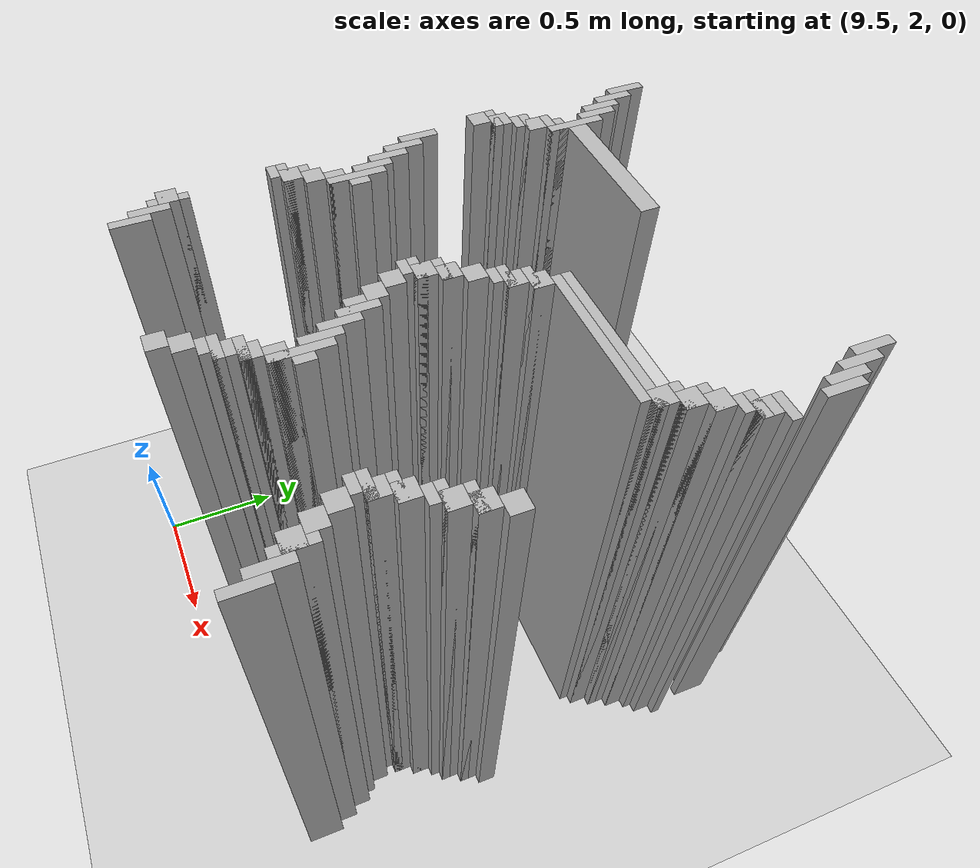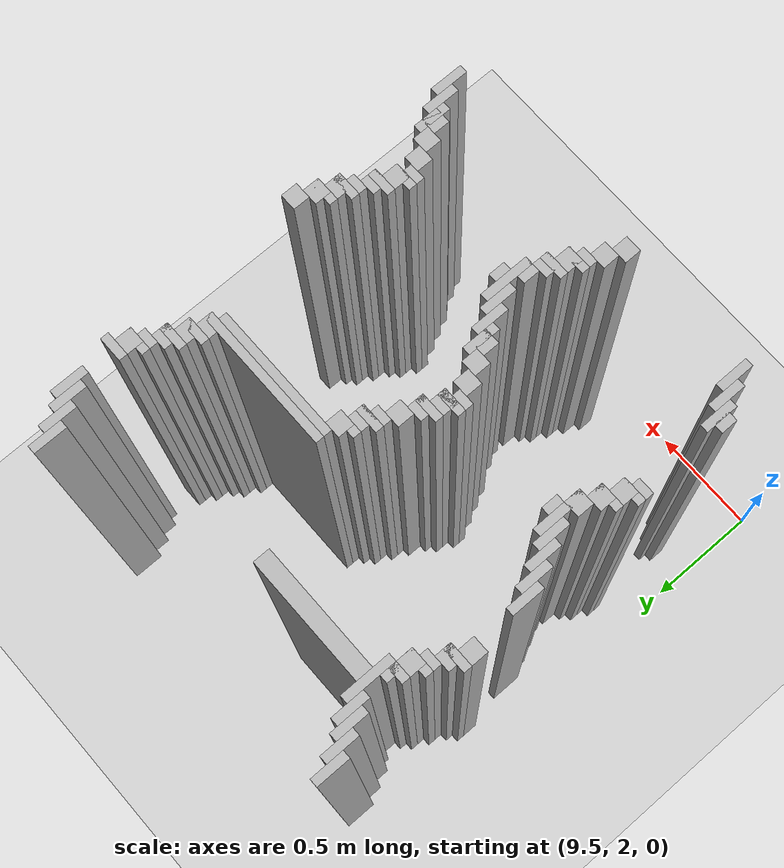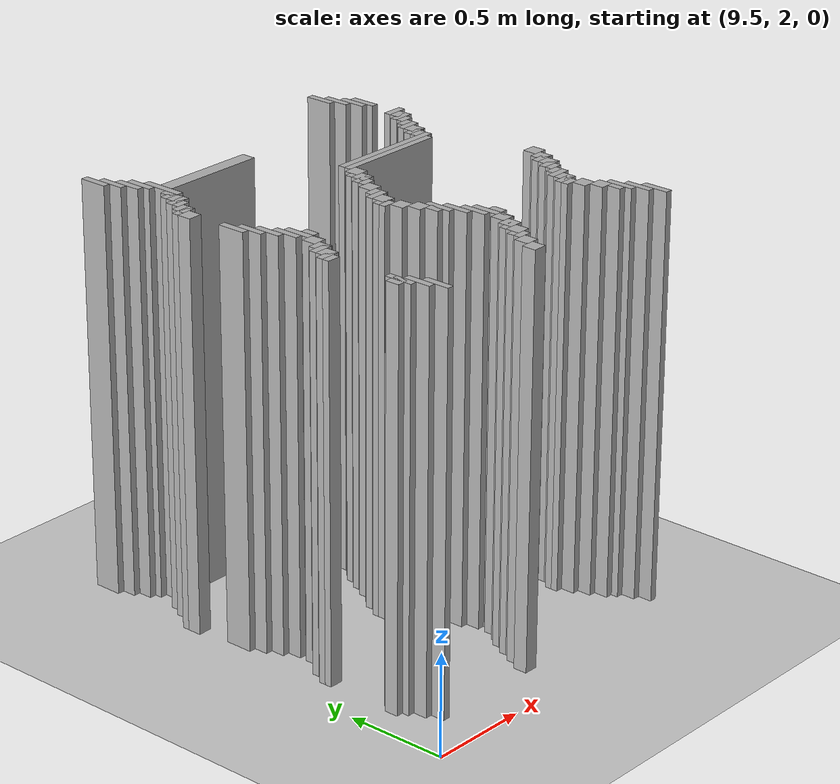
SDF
<sdf version="1.6">
 <world name="slam_world">
  <model name="ground_plane">
   <static>true</static>
   <link name="link">
    <collision name="collision">
     <geometry><plane><normal>0 0 1</normal><size>100 100</size></plane></geometry>
    </collision>
    <visual name="visual">
     <geometry><plane><normal>0 0 1</normal><size>100 100</size></plane></geometry>
     <material>
      <ambient>0.8 0.8 0.8 1</ambient>
      <diffuse>0.8 0.8 0.8 1</diffuse>
      <specular>0.8 0.8 0.8 1</specular>
     </material>
    </visual>
   </link>
  </model>
  <model name="wall_4465">
   <static>true</static>
   <pose>9.657772621809745 4.1415313225058 1.0 0 0 0</pose>
   <link name="link">
    <collision name="collision">
     <geometry><box><size>0.03480278422273782 0.13921113689095127 2.0</size></box></geometry>
    </collision>
    <visual name="visual">
     <geometry><box><size>0.03480278422273782 0.13921113689095127 2.0</size></box></geometry>
     <material><ambient>0.5 0.5 0.5 1</ambient><diffuse>0.7 0.7 0.7 1</diffuse></material>
    </visual>
   </link>
  </model>
  <model name="wall_4466">
   <static>true</static>
   <pose>11.119489559164732 4.1415313225058 1.0 0 0 0</pose>
   <link name="link">
    <collision name="collision">
     <geometry><box><size>0.03480278422273782 0.13921113689095127 2.0</size></box></geometry>
    </collision>
    <visual name="visual">
     <geometry><box><size>0.03480278422273782 0.13921113689095127 2.0</size></box></geometry>
     <material><ambient>0.5 0.5 0.5 1</ambient><diffuse>0.7 0.7 0.7 1</diffuse></material>
    </visual>
   </link>
  </model>
  <model name="wall_4490">
   <static>true</static>
   <pose>9.692575406032482 4.071925754060325 1.0 0 0 0</pose>
   <link name="link">
    <collision name="collision">
     <geometry><box><size>0.03480278422273782 0.13921113689095127 2.0</size></box></geometry>
    </collision>
    <visual name="visual">
     <geometry><box><size>0.03480278422273782 0.13921113689095127 2.0</size></box></geometry>
     <material><ambient>0.5 0.5 0.5 1</ambient><diffuse>0.7 0.7 0.7 1</diffuse></material>
    </visual>
   </link>
  </model>
  <model name="wall_4491">
   <static>true</static>
   <pose>11.154292343387471 4.071925754060325 1.0 0 0 0</pose>
   <link name="link">
    <collision name="collision">
     <geometry><box><size>0.03480278422273782 0.13921113689095127 2.0</size></box></geometry>
    </collision>
    <visual name="visual">
     <geometry><box><size>0.03480278422273782 0.13921113689095127 2.0</size></box></geometry>
     <material><ambient>0.5 0.5 0.5 1</ambient><diffuse>0.7 0.7 0.7 1</diffuse></material>
    </visual>
   </link>
  </model>
  <model name="wall_4505">
   <static>true</static>
   <pose>9.72737819025522 4.002320185614849 1.0 0 0 0</pose>
   <link name="link">
    <collision name="collision">
     <geometry><box><size>0.03480278422273782 0.13921113689095127 2.0</size></box></geometry>
    </collision>
    <visual name="visual">
     <geometry><box><size>0.03480278422273782 0.13921113689095127 2.0</size></box></geometry>
     <material><ambient>0.5 0.5 0.5 1</ambient><diffuse>0.7 0.7 0.7 1</diffuse></material>
    </visual>
   </link>
  </model>
  <model name="wall_4506">
   <static>true</static>
   <pose>11.189095127610209 4.002320185614849 1.0 0 0 0</pose>
   <link name="link">
    <collision name="collision">
     <geometry><box><size>0.03480278422273782 0.13921113689095127 2.0</size></box></geometry>
    </collision>
    <visual name="visual">
     <geometry><box><size>0.03480278422273782 0.13921113689095127 2.0</size></box></geometry>
     <material><ambient>0.5 0.5 0.5 1</ambient><diffuse>0.7 0.7 0.7 1</diffuse></material>
    </visual>
   </link>
  </model>
  <model name="wall_4520">
   <static>true</static>
   <pose>9.762180974477959 3.967517401392111 1.0 0 0 0</pose>
   <link name="link">
    <collision name="collision">
     <geometry><box><size>0.03480278422273782 0.13921113689095127 2.0</size></box></geometry>
    </collision>
    <visual name="visual">
     <geometry><box><size>0.03480278422273782 0.13921113689095127 2.0</size></box></geometry>
     <material><ambient>0.5 0.5 0.5 1</ambient><diffuse>0.7 0.7 0.7 1</diffuse></material>
    </visual>
   </link>
  </model>
  <model name="wall_4521">
   <static>true</static>
   <pose>11.223897911832946 3.967517401392111 1.0 0 0 0</pose>
   <link name="link">
    <collision name="collision">
     <geometry><box><size>0.03480278422273782 0.13921113689095127 2.0</size></box></geometry>
    </collision>
    <visual name="visual">
     <geometry><box><size>0.03480278422273782 0.13921113689095127 2.0</size></box></geometry>
     <material><ambient>0.5 0.5 0.5 1</ambient><diffuse>0.7 0.7 0.7 1</diffuse></material>
    </visual>
   </link>
  </model>
  <model name="wall_4543">
   <static>true</static>
   <pose>9.796983758700696 3.863109048723898 1.0 0 0 0</pose>
   <link name="link">
    <collision name="collision">
     <geometry><box><size>0.03480278422273782 0.2088167053364269 2.0</size></box></geometry>
    </collision>
    <visual name="visual">
     <geometry><box><size>0.03480278422273782 0.2088167053364269 2.0</size></box></geometry>
     <material><ambient>0.5 0.5 0.5 1</ambient><diffuse>0.7 0.7 0.7 1</diffuse></material>
    </visual>
   </link>
  </model>
  <model name="wall_4565">
   <static>true</static>
   <pose>10.075406032482599 3.863109048723898 1.0 0 0 0</pose>
   <link name="link">
    <collision name="collision">
     <geometry><box><size>0.5220417633410672 0.06960556844547564 2.0</size></box></geometry>
    </collision>
    <visual name="visual">
     <geometry><box><size>0.5220417633410672 0.06960556844547564 2.0</size></box></geometry>
     <material><ambient>0.5 0.5 0.5 1</ambient><diffuse>0.7 0.7 0.7 1</diffuse></material>
    </visual>
   </link>
  </model>
  <model name="wall_4581">
   <static>true</static>
   <pose>9.779582366589327 3.793503480278422 1.0 0 0 0</pose>
   <link name="link">
    <collision name="collision">
     <geometry><box><size>0.06960556844547564 0.06960556844547564 2.0</size></box></geometry>
    </collision>
    <visual name="visual">
     <geometry><box><size>0.06960556844547564 0.06960556844547564 2.0</size></box></geometry>
     <material><ambient>0.5 0.5 0.5 1</ambient><diffuse>0.7 0.7 0.7 1</diffuse></material>
    </visual>
   </link>
  </model>
  <model name="wall_4595">
   <static>true</static>
   <pose>9.762180974477959 3.776102088167053 1.0 0 0 0</pose>
   <link name="link">
    <collision name="collision">
     <geometry><box><size>0.10440835266821345 0.03480278422273782 2.0</size></box></geometry>
    </collision>
    <visual name="visual">
     <geometry><box><size>0.10440835266821345 0.03480278422273782 2.0</size></box></geometry>
     <material><ambient>0.5 0.5 0.5 1</ambient><diffuse>0.7 0.7 0.7 1</diffuse></material>
    </visual>
   </link>
  </model>
  <model name="wall_4596">
   <static>true</static>
   <pose>11.223897911832946 3.776102088167053 1.0 0 0 0</pose>
   <link name="link">
    <collision name="collision">
     <geometry><box><size>0.10440835266821345 0.03480278422273782 2.0</size></box></geometry>
    </collision>
    <visual name="visual">
     <geometry><box><size>0.10440835266821345 0.03480278422273782 2.0</size></box></geometry>
     <material><ambient>0.5 0.5 0.5 1</ambient><diffuse>0.7 0.7 0.7 1</diffuse></material>
    </visual>
   </link>
  </model>
  <model name="wall_4609">
   <static>true</static>
   <pose>9.744779582366588 3.7238979118329465 1.0 0 0 0</pose>
   <link name="link">
    <collision name="collision">
     <geometry><box><size>0.06960556844547564 0.06960556844547564 2.0</size></box></geometry>
    </collision>
    <visual name="visual">
     <geometry><box><size>0.06960556844547564 0.06960556844547564 2.0</size></box></geometry>
     <material><ambient>0.5 0.5 0.5 1</ambient><diffuse>0.7 0.7 0.7 1</diffuse></material>
    </visual>
   </link>
  </model>
  <model name="wall_4610">
   <static>true</static>
   <pose>11.206496519721577 3.7238979118329465 1.0 0 0 0</pose>
   <link name="link">
    <collision name="collision">
     <geometry><box><size>0.06960556844547564 0.06960556844547564 2.0</size></box></geometry>
    </collision>
    <visual name="visual">
     <geometry><box><size>0.06960556844547564 0.06960556844547564 2.0</size></box></geometry>
     <material><ambient>0.5 0.5 0.5 1</ambient><diffuse>0.7 0.7 0.7 1</diffuse></material>
    </visual>
   </link>
  </model>
  <model name="wall_4623">
   <static>true</static>
   <pose>9.72737819025522 3.706496519721578 1.0 0 0 0</pose>
   <link name="link">
    <collision name="collision">
     <geometry><box><size>0.10440835266821345 0.03480278422273782 2.0</size></box></geometry>
    </collision>
    <visual name="visual">
     <geometry><box><size>0.10440835266821345 0.03480278422273782 2.0</size></box></geometry>
     <material><ambient>0.5 0.5 0.5 1</ambient><diffuse>0.7 0.7 0.7 1</diffuse></material>
    </visual>
   </link>
  </model>
  <model name="wall_4624">
   <static>true</static>
   <pose>11.189095127610209 3.706496519721578 1.0 0 0 0</pose>
   <link name="link">
    <collision name="collision">
     <geometry><box><size>0.10440835266821345 0.03480278422273782 2.0</size></box></geometry>
    </collision>
    <visual name="visual">
     <geometry><box><size>0.10440835266821345 0.03480278422273782 2.0</size></box></geometry>
     <material><ambient>0.5 0.5 0.5 1</ambient><diffuse>0.7 0.7 0.7 1</diffuse></material>
    </visual>
   </link>
  </model>
  <model name="wall_4633">
   <static>true</static>
   <pose>9.70997679814385 3.67169373549884 1.0 0 0 0</pose>
   <link name="link">
    <collision name="collision">
     <geometry><box><size>0.06960556844547564 0.03480278422273782 2.0</size></box></geometry>
    </collision>
    <visual name="visual">
     <geometry><box><size>0.06960556844547564 0.03480278422273782 2.0</size></box></geometry>
     <material><ambient>0.5 0.5 0.5 1</ambient><diffuse>0.7 0.7 0.7 1</diffuse></material>
    </visual>
   </link>
  </model>
  <model name="wall_4634">
   <static>true</static>
   <pose>11.17169373549884 3.67169373549884 1.0 0 0 0</pose>
   <link name="link">
    <collision name="collision">
     <geometry><box><size>0.06960556844547564 0.03480278422273782 2.0</size></box></geometry>
    </collision>
    <visual name="visual">
     <geometry><box><size>0.06960556844547564 0.03480278422273782 2.0</size></box></geometry>
     <material><ambient>0.5 0.5 0.5 1</ambient><diffuse>0.7 0.7 0.7 1</diffuse></material>
    </visual>
   </link>
  </model>
  <model name="wall_4646">
   <static>true</static>
   <pose>9.675174013921113 3.619489559164733 1.0 0 0 0</pose>
   <link name="link">
    <collision name="collision">
     <geometry><box><size>0.06960556844547564 0.06960556844547564 2.0</size></box></geometry>
    </collision>
    <visual name="visual">
     <geometry><box><size>0.06960556844547564 0.06960556844547564 2.0</size></box></geometry>
     <material><ambient>0.5 0.5 0.5 1</ambient><diffuse>0.7 0.7 0.7 1</diffuse></material>
    </visual>
   </link>
  </model>
  <model name="wall_4647">
   <static>true</static>
   <pose>11.1368909512761 3.619489559164733 1.0 0 0 0</pose>
   <link name="link">
    <collision name="collision">
     <geometry><box><size>0.06960556844547564 0.06960556844547564 2.0</size></box></geometry>
    </collision>
    <visual name="visual">
     <geometry><box><size>0.06960556844547564 0.06960556844547564 2.0</size></box></geometry>
     <material><ambient>0.5 0.5 0.5 1</ambient><diffuse>0.7 0.7 0.7 1</diffuse></material>
    </visual>
   </link>
  </model>
  <model name="wall_4656">
   <static>true</static>
   <pose>9.657772621809745 3.602088167053364 1.0 0 0 0</pose>
   <link name="link">
    <collision name="collision">
     <geometry><box><size>0.10440835266821345 0.03480278422273782 2.0</size></box></geometry>
    </collision>
    <visual name="visual">
     <geometry><box><size>0.10440835266821345 0.03480278422273782 2.0</size></box></geometry>
     <material><ambient>0.5 0.5 0.5 1</ambient><diffuse>0.7 0.7 0.7 1</diffuse></material>
    </visual>
   </link>
  </model>
  <model name="wall_4657">
   <static>true</static>
   <pose>11.119489559164732 3.602088167053364 1.0 0 0 0</pose>
   <link name="link">
    <collision name="collision">
     <geometry><box><size>0.10440835266821345 0.03480278422273782 2.0</size></box></geometry>
    </collision>
    <visual name="visual">
     <geometry><box><size>0.10440835266821345 0.03480278422273782 2.0</size></box></geometry>
     <material><ambient>0.5 0.5 0.5 1</ambient><diffuse>0.7 0.7 0.7 1</diffuse></material>
    </visual>
   </link>
  </model>
  <model name="wall_4669">
   <static>true</static>
   <pose>9.640371229698376 3.549883990719257 1.0 0 0 0</pose>
   <link name="link">
    <collision name="collision">
     <geometry><box><size>0.06960556844547564 0.06960556844547564 2.0</size></box></geometry>
    </collision>
    <visual name="visual">
     <geometry><box><size>0.06960556844547564 0.06960556844547564 2.0</size></box></geometry>
     <material><ambient>0.5 0.5 0.5 1</ambient><diffuse>0.7 0.7 0.7 1</diffuse></material>
    </visual>
   </link>
  </model>
  <model name="wall_4670">
   <static>true</static>
   <pose>11.102088167053363 3.549883990719257 1.0 0 0 0</pose>
   <link name="link">
    <collision name="collision">
     <geometry><box><size>0.06960556844547564 0.06960556844547564 2.0</size></box></geometry>
    </collision>
    <visual name="visual">
     <geometry><box><size>0.06960556844547564 0.06960556844547564 2.0</size></box></geometry>
     <material><ambient>0.5 0.5 0.5 1</ambient><diffuse>0.7 0.7 0.7 1</diffuse></material>
    </visual>
   </link>
  </model>
  <model name="wall_4684">
   <static>true</static>
   <pose>11.084686774941995 3.5324825986078885 1.0 0 0 0</pose>
   <link name="link">
    <collision name="collision">
     <geometry><box><size>0.10440835266821345 0.03480278422273782 2.0</size></box></geometry>
    </collision>
    <visual name="visual">
     <geometry><box><size>0.10440835266821345 0.03480278422273782 2.0</size></box></geometry>
     <material><ambient>0.5 0.5 0.5 1</ambient><diffuse>0.7 0.7 0.7 1</diffuse></material>
    </visual>
   </link>
  </model>
  <model name="wall_4694">
   <static>true</static>
   <pose>11.067285382830626 3.480278422273782 1.0 0 0 0</pose>
   <link name="link">
    <collision name="collision">
     <geometry><box><size>0.06960556844547564 0.06960556844547564 2.0</size></box></geometry>
    </collision>
    <visual name="visual">
     <geometry><box><size>0.06960556844547564 0.06960556844547564 2.0</size></box></geometry>
     <material><ambient>0.5 0.5 0.5 1</ambient><diffuse>0.7 0.7 0.7 1</diffuse></material>
    </visual>
   </link>
  </model>
  <model name="wall_4706">
   <static>true</static>
   <pose>10.806264501160092 3.4628770301624128 1.0 0 0 0</pose>
   <link name="link">
    <collision name="collision">
     <geometry><box><size>0.5916473317865429 0.03480278422273782 2.0</size></box></geometry>
    </collision>
    <visual name="visual">
     <geometry><box><size>0.5916473317865429 0.03480278422273782 2.0</size></box></geometry>
     <material><ambient>0.5 0.5 0.5 1</ambient><diffuse>0.7 0.7 0.7 1</diffuse></material>
    </visual>
   </link>
  </model>
  <model name="wall_4717">
   <static>true</static>
   <pose>10.788863109048723 3.428074245939675 1.0 0 0 0</pose>
   <link name="link">
    <collision name="collision">
     <geometry><box><size>0.5568445475638051 0.03480278422273782 2.0</size></box></geometry>
    </collision>
    <visual name="visual">
     <geometry><box><size>0.5568445475638051 0.03480278422273782 2.0</size></box></geometry>
     <material><ambient>0.5 0.5 0.5 1</ambient><diffuse>0.7 0.7 0.7 1</diffuse></material>
    </visual>
   </link>
  </model>
  <model name="wall_4728">
   <static>true</static>
   <pose>10.51044083526682 3.3758700696055683 1.0 0 0 0</pose>
   <link name="link">
    <collision name="collision">
     <geometry><box><size>0.06960556844547564 0.06960556844547564 2.0</size></box></geometry>
    </collision>
    <visual name="visual">
     <geometry><box><size>0.06960556844547564 0.06960556844547564 2.0</size></box></geometry>
     <material><ambient>0.5 0.5 0.5 1</ambient><diffuse>0.7 0.7 0.7 1</diffuse></material>
    </visual>
   </link>
  </model>
  <model name="wall_4741">
   <static>true</static>
   <pose>9.657772621809745 3.3062645011600926 1.0 0 0 0</pose>
   <link name="link">
    <collision name="collision">
     <geometry><box><size>0.03480278422273782 0.13921113689095127 2.0</size></box></geometry>
    </collision>
    <visual name="visual">
     <geometry><box><size>0.03480278422273782 0.13921113689095127 2.0</size></box></geometry>
     <material><ambient>0.5 0.5 0.5 1</ambient><diffuse>0.7 0.7 0.7 1</diffuse></material>
    </visual>
   </link>
  </model>
  <model name="wall_4742">
   <static>true</static>
   <pose>10.493039443155451 3.358468677494199 1.0 0 0 0</pose>
   <link name="link">
    <collision name="collision">
     <geometry><box><size>0.10440835266821345 0.03480278422273782 2.0</size></box></geometry>
    </collision>
    <visual name="visual">
     <geometry><box><size>0.10440835266821345 0.03480278422273782 2.0</size></box></geometry>
     <material><ambient>0.5 0.5 0.5 1</ambient><diffuse>0.7 0.7 0.7 1</diffuse></material>
    </visual>
   </link>
  </model>
  <model name="wall_4756">
   <static>true</static>
   <pose>10.475638051044083 3.3062645011600926 1.0 0 0 0</pose>
   <link name="link">
    <collision name="collision">
     <geometry><box><size>0.06960556844547564 0.06960556844547564 2.0</size></box></geometry>
    </collision>
    <visual name="visual">
     <geometry><box><size>0.06960556844547564 0.06960556844547564 2.0</size></box></geometry>
     <material><ambient>0.5 0.5 0.5 1</ambient><diffuse>0.7 0.7 0.7 1</diffuse></material>
    </visual>
   </link>
  </model>
  <model name="wall_4769">
   <static>true</static>
   <pose>9.692575406032482 3.236658932714617 1.0 0 0 0</pose>
   <link name="link">
    <collision name="collision">
     <geometry><box><size>0.03480278422273782 0.13921113689095127 2.0</size></box></geometry>
    </collision>
    <visual name="visual">
     <geometry><box><size>0.03480278422273782 0.13921113689095127 2.0</size></box></geometry>
     <material><ambient>0.5 0.5 0.5 1</ambient><diffuse>0.7 0.7 0.7 1</diffuse></material>
    </visual>
   </link>
  </model>
  <model name="wall_4770">
   <static>true</static>
   <pose>10.458236658932714 3.288863109048724 1.0 0 0 0</pose>
   <link name="link">
    <collision name="collision">
     <geometry><box><size>0.10440835266821345 0.03480278422273782 2.0</size></box></geometry>
    </collision>
    <visual name="visual">
     <geometry><box><size>0.10440835266821345 0.03480278422273782 2.0</size></box></geometry>
     <material><ambient>0.5 0.5 0.5 1</ambient><diffuse>0.7 0.7 0.7 1</diffuse></material>
    </visual>
   </link>
  </model>
  <model name="wall_4779">
   <static>true</static>
   <pose>10.440835266821345 3.254060324825986 1.0 0 0 0</pose>
   <link name="link">
    <collision name="collision">
     <geometry><box><size>0.06960556844547564 0.03480278422273782 2.0</size></box></geometry>
    </collision>
    <visual name="visual">
     <geometry><box><size>0.06960556844547564 0.03480278422273782 2.0</size></box></geometry>
     <material><ambient>0.5 0.5 0.5 1</ambient><diffuse>0.7 0.7 0.7 1</diffuse></material>
    </visual>
   </link>
  </model>
  <model name="wall_4790">
   <static>true</static>
   <pose>9.72737819025522 3.167053364269141 1.0 0 0 0</pose>
   <link name="link">
    <collision name="collision">
     <geometry><box><size>0.03480278422273782 0.13921113689095127 2.0</size></box></geometry>
    </collision>
    <visual name="visual">
     <geometry><box><size>0.03480278422273782 0.13921113689095127 2.0</size></box></geometry>
     <material><ambient>0.5 0.5 0.5 1</ambient><diffuse>0.7 0.7 0.7 1</diffuse></material>
    </visual>
   </link>
  </model>
  <model name="wall_4791">
   <static>true</static>
   <pose>10.406032482598608 3.201856148491879 1.0 0 0 0</pose>
   <link name="link">
    <collision name="collision">
     <geometry><box><size>0.06960556844547564 0.06960556844547564 2.0</size></box></geometry>
    </collision>
    <visual name="visual">
     <geometry><box><size>0.06960556844547564 0.06960556844547564 2.0</size></box></geometry>
     <material><ambient>0.5 0.5 0.5 1</ambient><diffuse>0.7 0.7 0.7 1</diffuse></material>
    </visual>
   </link>
  </model>
  <model name="wall_4804">
   <static>true</static>
   <pose>9.762180974477959 3.097447795823666 1.0 0 0 0</pose>
   <link name="link">
    <collision name="collision">
     <geometry><box><size>0.03480278422273782 0.13921113689095127 2.0</size></box></geometry>
    </collision>
    <visual name="visual">
     <geometry><box><size>0.03480278422273782 0.13921113689095127 2.0</size></box></geometry>
     <material><ambient>0.5 0.5 0.5 1</ambient><diffuse>0.7 0.7 0.7 1</diffuse></material>
    </visual>
   </link>
  </model>
  <model name="wall_4805">
   <static>true</static>
   <pose>10.37122969837587 3.1322505800464038 1.0 0 0 0</pose>
   <link name="link">
    <collision name="collision">
     <geometry><box><size>0.06960556844547564 0.06960556844547564 2.0</size></box></geometry>
    </collision>
    <visual name="visual">
     <geometry><box><size>0.06960556844547564 0.06960556844547564 2.0</size></box></geometry>
     <material><ambient>0.5 0.5 0.5 1</ambient><diffuse>0.7 0.7 0.7 1</diffuse></material>
    </visual>
   </link>
  </model>
  <model name="wall_4818">
   <static>true</static>
   <pose>9.796983758700696 3.02784222737819 1.0 0 0 0</pose>
   <link name="link">
    <collision name="collision">
     <geometry><box><size>0.03480278422273782 0.2088167053364269 2.0</size></box></geometry>
    </collision>
    <visual name="visual">
     <geometry><box><size>0.03480278422273782 0.2088167053364269 2.0</size></box></geometry>
     <material><ambient>0.5 0.5 0.5 1</ambient><diffuse>0.7 0.7 0.7 1</diffuse></material>
    </visual>
   </link>
  </model>
  <model name="wall_4819">
   <static>true</static>
   <pose>10.3538283062645 3.1148491879350346 1.0 0 0 0</pose>
   <link name="link">
    <collision name="collision">
     <geometry><box><size>0.10440835266821345 0.03480278422273782 2.0</size></box></geometry>
    </collision>
    <visual name="visual">
     <geometry><box><size>0.10440835266821345 0.03480278422273782 2.0</size></box></geometry>
     <material><ambient>0.5 0.5 0.5 1</ambient><diffuse>0.7 0.7 0.7 1</diffuse></material>
    </visual>
   </link>
  </model>
  <model name="wall_4828">
   <static>true</static>
   <pose>10.336426914153131 3.062645011600928 1.0 0 0 0</pose>
   <link name="link">
    <collision name="collision">
     <geometry><box><size>0.06960556844547564 0.06960556844547564 2.0</size></box></geometry>
    </collision>
    <visual name="visual">
     <geometry><box><size>0.06960556844547564 0.06960556844547564 2.0</size></box></geometry>
     <material><ambient>0.5 0.5 0.5 1</ambient><diffuse>0.7 0.7 0.7 1</diffuse></material>
    </visual>
   </link>
  </model>
  <model name="wall_4841">
   <static>true</static>
   <pose>9.831786542923433 3.02784222737819 1.0 0 0 0</pose>
   <link name="link">
    <collision name="collision">
     <geometry><box><size>0.03480278422273782 0.06960556844547564 2.0</size></box></geometry>
    </collision>
    <visual name="visual">
     <geometry><box><size>0.03480278422273782 0.06960556844547564 2.0</size></box></geometry>
     <material><ambient>0.5 0.5 0.5 1</ambient><diffuse>0.7 0.7 0.7 1</diffuse></material>
    </visual>
   </link>
  </model>
  <model name="wall_4842">
   <static>true</static>
   <pose>10.319025522041763 3.045243619489559 1.0 0 0 0</pose>
   <link name="link">
    <collision name="collision">
     <geometry><box><size>0.10440835266821345 0.03480278422273782 2.0</size></box></geometry>
    </collision>
    <visual name="visual">
     <geometry><box><size>0.10440835266821345 0.03480278422273782 2.0</size></box></geometry>
     <material><ambient>0.5 0.5 0.5 1</ambient><diffuse>0.7 0.7 0.7 1</diffuse></material>
    </visual>
   </link>
  </model>
  <model name="wall_4851">
   <static>true</static>
   <pose>10.301624129930394 3.010440835266821 1.0 0 0 0</pose>
   <link name="link">
    <collision name="collision">
     <geometry><box><size>0.06960556844547564 0.03480278422273782 2.0</size></box></geometry>
    </collision>
    <visual name="visual">
     <geometry><box><size>0.06960556844547564 0.03480278422273782 2.0</size></box></geometry>
     <material><ambient>0.5 0.5 0.5 1</ambient><diffuse>0.7 0.7 0.7 1</diffuse></material>
    </visual>
   </link>
  </model>
  <model name="wall_4863">
   <static>true</static>
   <pose>9.779582366589327 2.9582366589327145 1.0 0 0 0</pose>
   <link name="link">
    <collision name="collision">
     <geometry><box><size>0.06960556844547564 0.06960556844547564 2.0</size></box></geometry>
    </collision>
    <visual name="visual">
     <geometry><box><size>0.06960556844547564 0.06960556844547564 2.0</size></box></geometry>
     <material><ambient>0.5 0.5 0.5 1</ambient><diffuse>0.7 0.7 0.7 1</diffuse></material>
    </visual>
   </link>
  </model>
  <model name="wall_4864">
   <static>true</static>
   <pose>10.336426914153131 2.9582366589327145 1.0 0 0 0</pose>
   <link name="link">
    <collision name="collision">
     <geometry><box><size>0.06960556844547564 0.06960556844547564 2.0</size></box></geometry>
    </collision>
    <visual name="visual">
     <geometry><box><size>0.06960556844547564 0.06960556844547564 2.0</size></box></geometry>
     <material><ambient>0.5 0.5 0.5 1</ambient><diffuse>0.7 0.7 0.7 1</diffuse></material>
    </visual>
   </link>
  </model>
  <model name="wall_4865">
   <static>true</static>
   <pose>11.241299303944315 2.9582366589327145 1.0 0 0 0</pose>
   <link name="link">
    <collision name="collision">
     <geometry><box><size>0.06960556844547564 0.06960556844547564 2.0</size></box></geometry>
    </collision>
    <visual name="visual">
     <geometry><box><size>0.06960556844547564 0.06960556844547564 2.0</size></box></geometry>
     <material><ambient>0.5 0.5 0.5 1</ambient><diffuse>0.7 0.7 0.7 1</diffuse></material>
    </visual>
   </link>
  </model>
  <model name="wall_4881">
   <static>true</static>
   <pose>9.744779582366588 2.8886310904872388 1.0 0 0 0</pose>
   <link name="link">
    <collision name="collision">
     <geometry><box><size>0.06960556844547564 0.06960556844547564 2.0</size></box></geometry>
    </collision>
    <visual name="visual">
     <geometry><box><size>0.06960556844547564 0.06960556844547564 2.0</size></box></geometry>
     <material><ambient>0.5 0.5 0.5 1</ambient><diffuse>0.7 0.7 0.7 1</diffuse></material>
    </visual>
   </link>
  </model>
  <model name="wall_4882">
   <static>true</static>
   <pose>10.37122969837587 2.8886310904872388 1.0 0 0 0</pose>
   <link name="link">
    <collision name="collision">
     <geometry><box><size>0.06960556844547564 0.06960556844547564 2.0</size></box></geometry>
    </collision>
    <visual name="visual">
     <geometry><box><size>0.06960556844547564 0.06960556844547564 2.0</size></box></geometry>
     <material><ambient>0.5 0.5 0.5 1</ambient><diffuse>0.7 0.7 0.7 1</diffuse></material>
    </visual>
   </link>
  </model>
  <model name="wall_4883">
   <static>true</static>
   <pose>11.206496519721577 2.8886310904872388 1.0 0 0 0</pose>
   <link name="link">
    <collision name="collision">
     <geometry><box><size>0.06960556844547564 0.06960556844547564 2.0</size></box></geometry>
    </collision>
    <visual name="visual">
     <geometry><box><size>0.06960556844547564 0.06960556844547564 2.0</size></box></geometry>
     <material><ambient>0.5 0.5 0.5 1</ambient><diffuse>0.7 0.7 0.7 1</diffuse></material>
    </visual>
   </link>
  </model>
  <model name="wall_4897">
   <static>true</static>
   <pose>9.72737819025522 2.87122969837587 1.0 0 0 0</pose>
   <link name="link">
    <collision name="collision">
     <geometry><box><size>0.10440835266821345 0.03480278422273782 2.0</size></box></geometry>
    </collision>
    <visual name="visual">
     <geometry><box><size>0.10440835266821345 0.03480278422273782 2.0</size></box></geometry>
     <material><ambient>0.5 0.5 0.5 1</ambient><diffuse>0.7 0.7 0.7 1</diffuse></material>
    </visual>
   </link>
  </model>
  <model name="wall_4898">
   <static>true</static>
   <pose>10.423433874709977 2.819025522041763 1.0 0 0 0</pose>
   <link name="link">
    <collision name="collision">
     <geometry><box><size>0.03480278422273782 0.13921113689095127 2.0</size></box></geometry>
    </collision>
    <visual name="visual">
     <geometry><box><size>0.03480278422273782 0.13921113689095127 2.0</size></box></geometry>
     <material><ambient>0.5 0.5 0.5 1</ambient><diffuse>0.7 0.7 0.7 1</diffuse></material>
    </visual>
   </link>
  </model>
  <model name="wall_4899">
   <static>true</static>
   <pose>11.189095127610209 2.87122969837587 1.0 0 0 0</pose>
   <link name="link">
    <collision name="collision">
     <geometry><box><size>0.10440835266821345 0.03480278422273782 2.0</size></box></geometry>
    </collision>
    <visual name="visual">
     <geometry><box><size>0.10440835266821345 0.03480278422273782 2.0</size></box></geometry>
     <material><ambient>0.5 0.5 0.5 1</ambient><diffuse>0.7 0.7 0.7 1</diffuse></material>
    </visual>
   </link>
  </model>
  <model name="wall_4913">
   <static>true</static>
   <pose>9.70997679814385 2.819025522041763 1.0 0 0 0</pose>
   <link name="link">
    <collision name="collision">
     <geometry><box><size>0.06960556844547564 0.06960556844547564 2.0</size></box></geometry>
    </collision>
    <visual name="visual">
     <geometry><box><size>0.06960556844547564 0.06960556844547564 2.0</size></box></geometry>
     <material><ambient>0.5 0.5 0.5 1</ambient><diffuse>0.7 0.7 0.7 1</diffuse></material>
    </visual>
   </link>
  </model>
  <model name="wall_4914">
   <static>true</static>
   <pose>10.406032482598608 2.819025522041763 1.0 0 0 0</pose>
   <link name="link">
    <collision name="collision">
     <geometry><box><size>0.06960556844547564 0.06960556844547564 2.0</size></box></geometry>
    </collision>
    <visual name="visual">
     <geometry><box><size>0.06960556844547564 0.06960556844547564 2.0</size></box></geometry>
     <material><ambient>0.5 0.5 0.5 1</ambient><diffuse>0.7 0.7 0.7 1</diffuse></material>
    </visual>
   </link>
  </model>
  <model name="wall_4915">
   <static>true</static>
   <pose>11.17169373549884 2.819025522041763 1.0 0 0 0</pose>
   <link name="link">
    <collision name="collision">
     <geometry><box><size>0.06960556844547564 0.06960556844547564 2.0</size></box></geometry>
    </collision>
    <visual name="visual">
     <geometry><box><size>0.06960556844547564 0.06960556844547564 2.0</size></box></geometry>
     <material><ambient>0.5 0.5 0.5 1</ambient><diffuse>0.7 0.7 0.7 1</diffuse></material>
    </visual>
   </link>
  </model>
  <model name="wall_4929">
   <static>true</static>
   <pose>9.692575406032482 2.8016241299303943 1.0 0 0 0</pose>
   <link name="link">
    <collision name="collision">
     <geometry><box><size>0.10440835266821345 0.03480278422273782 2.0</size></box></geometry>
    </collision>
    <visual name="visual">
     <geometry><box><size>0.10440835266821345 0.03480278422273782 2.0</size></box></geometry>
     <material><ambient>0.5 0.5 0.5 1</ambient><diffuse>0.7 0.7 0.7 1</diffuse></material>
    </visual>
   </link>
  </model>
  <model name="wall_4930">
   <static>true</static>
   <pose>10.458236658932714 2.7494199535962878 1.0 0 0 0</pose>
   <link name="link">
    <collision name="collision">
     <geometry><box><size>0.03480278422273782 0.13921113689095127 2.0</size></box></geometry>
    </collision>
    <visual name="visual">
     <geometry><box><size>0.03480278422273782 0.13921113689095127 2.0</size></box></geometry>
     <material><ambient>0.5 0.5 0.5 1</ambient><diffuse>0.7 0.7 0.7 1</diffuse></material>
    </visual>
   </link>
  </model>
  <model name="wall_4931">
   <static>true</static>
   <pose>11.154292343387471 2.8016241299303943 1.0 0 0 0</pose>
   <link name="link">
    <collision name="collision">
     <geometry><box><size>0.10440835266821345 0.03480278422273782 2.0</size></box></geometry>
    </collision>
    <visual name="visual">
     <geometry><box><size>0.10440835266821345 0.03480278422273782 2.0</size></box></geometry>
     <material><ambient>0.5 0.5 0.5 1</ambient><diffuse>0.7 0.7 0.7 1</diffuse></material>
    </visual>
   </link>
  </model>
  <model name="wall_4939">
   <static>true</static>
   <pose>9.675174013921113 2.7668213457076565 1.0 0 0 0</pose>
   <link name="link">
    <collision name="collision">
     <geometry><box><size>0.06960556844547564 0.03480278422273782 2.0</size></box></geometry>
    </collision>
    <visual name="visual">
     <geometry><box><size>0.06960556844547564 0.03480278422273782 2.0</size></box></geometry>
     <material><ambient>0.5 0.5 0.5 1</ambient><diffuse>0.7 0.7 0.7 1</diffuse></material>
    </visual>
   </link>
  </model>
  <model name="wall_4940">
   <static>true</static>
   <pose>11.1368909512761 2.7668213457076565 1.0 0 0 0</pose>
   <link name="link">
    <collision name="collision">
     <geometry><box><size>0.06960556844547564 0.03480278422273782 2.0</size></box></geometry>
    </collision>
    <visual name="visual">
     <geometry><box><size>0.06960556844547564 0.03480278422273782 2.0</size></box></geometry>
     <material><ambient>0.5 0.5 0.5 1</ambient><diffuse>0.7 0.7 0.7 1</diffuse></material>
    </visual>
   </link>
  </model>
  <model name="wall_4953">
   <static>true</static>
   <pose>10.493039443155451 2.679814385150812 1.0 0 0 0</pose>
   <link name="link">
    <collision name="collision">
     <geometry><box><size>0.03480278422273782 0.13921113689095127 2.0</size></box></geometry>
    </collision>
    <visual name="visual">
     <geometry><box><size>0.03480278422273782 0.13921113689095127 2.0</size></box></geometry>
     <material><ambient>0.5 0.5 0.5 1</ambient><diffuse>0.7 0.7 0.7 1</diffuse></material>
    </visual>
   </link>
  </model>
  <model name="wall_4954">
   <static>true</static>
   <pose>11.102088167053363 2.71461716937355 1.0 0 0 0</pose>
   <link name="link">
    <collision name="collision">
     <geometry><box><size>0.06960556844547564 0.06960556844547564 2.0</size></box></geometry>
    </collision>
    <visual name="visual">
     <geometry><box><size>0.06960556844547564 0.06960556844547564 2.0</size></box></geometry>
     <material><ambient>0.5 0.5 0.5 1</ambient><diffuse>0.7 0.7 0.7 1</diffuse></material>
    </visual>
   </link>
  </model>
  <model name="wall_4969">
   <static>true</static>
   <pose>10.52784222737819 2.6102088167053363 1.0 0 0 0</pose>
   <link name="link">
    <collision name="collision">
     <geometry><box><size>0.03480278422273782 0.2088167053364269 2.0</size></box></geometry>
    </collision>
    <visual name="visual">
     <geometry><box><size>0.03480278422273782 0.2088167053364269 2.0</size></box></geometry>
     <material><ambient>0.5 0.5 0.5 1</ambient><diffuse>0.7 0.7 0.7 1</diffuse></material>
    </visual>
   </link>
  </model>
  <model name="wall_4970">
   <static>true</static>
   <pose>11.084686774941995 2.6972157772621808 1.0 0 0 0</pose>
   <link name="link">
    <collision name="collision">
     <geometry><box><size>0.10440835266821345 0.03480278422273782 2.0</size></box></geometry>
    </collision>
    <visual name="visual">
     <geometry><box><size>0.10440835266821345 0.03480278422273782 2.0</size></box></geometry>
     <material><ambient>0.5 0.5 0.5 1</ambient><diffuse>0.7 0.7 0.7 1</diffuse></material>
    </visual>
   </link>
  </model>
  <model name="wall_4979">
   <static>true</static>
   <pose>11.067285382830626 2.645011600928074 1.0 0 0 0</pose>
   <link name="link">
    <collision name="collision">
     <geometry><box><size>0.06960556844547564 0.06960556844547564 2.0</size></box></geometry>
    </collision>
    <visual name="visual">
     <geometry><box><size>0.06960556844547564 0.06960556844547564 2.0</size></box></geometry>
     <material><ambient>0.5 0.5 0.5 1</ambient><diffuse>0.7 0.7 0.7 1</diffuse></material>
    </visual>
   </link>
  </model>
  <model name="wall_4990">
   <static>true</static>
   <pose>10.562645011600928 2.6102088167053363 1.0 0 0 0</pose>
   <link name="link">
    <collision name="collision">
     <geometry><box><size>0.03480278422273782 0.06960556844547564 2.0</size></box></geometry>
    </collision>
    <visual name="visual">
     <geometry><box><size>0.03480278422273782 0.06960556844547564 2.0</size></box></geometry>
     <material><ambient>0.5 0.5 0.5 1</ambient><diffuse>0.7 0.7 0.7 1</diffuse></material>
    </visual>
   </link>
  </model>
  <model name="wall_4991">
   <static>true</static>
   <pose>11.049883990719257 2.627610208816705 1.0 0 0 0</pose>
   <link name="link">
    <collision name="collision">
     <geometry><box><size>0.10440835266821345 0.03480278422273782 2.0</size></box></geometry>
    </collision>
    <visual name="visual">
     <geometry><box><size>0.10440835266821345 0.03480278422273782 2.0</size></box></geometry>
     <material><ambient>0.5 0.5 0.5 1</ambient><diffuse>0.7 0.7 0.7 1</diffuse></material>
    </visual>
   </link>
  </model>
  <model name="wall_5003">
   <static>true</static>
   <pose>11.032482598607888 2.5928074245939676 1.0 0 0 0</pose>
   <link name="link">
    <collision name="collision">
     <geometry><box><size>0.06960556844547564 0.03480278422273782 2.0</size></box></geometry>
    </collision>
    <visual name="visual">
     <geometry><box><size>0.06960556844547564 0.03480278422273782 2.0</size></box></geometry>
     <material><ambient>0.5 0.5 0.5 1</ambient><diffuse>0.7 0.7 0.7 1</diffuse></material>
    </visual>
   </link>
  </model>
  <model name="wall_5018">
   <static>true</static>
   <pose>10.51044083526682 2.5406032482598606 1.0 0 0 0</pose>
   <link name="link">
    <collision name="collision">
     <geometry><box><size>0.06960556844547564 0.06960556844547564 2.0</size></box></geometry>
    </collision>
    <visual name="visual">
     <geometry><box><size>0.06960556844547564 0.06960556844547564 2.0</size></box></geometry>
     <material><ambient>0.5 0.5 0.5 1</ambient><diffuse>0.7 0.7 0.7 1</diffuse></material>
    </visual>
   </link>
  </model>
  <model name="wall_5019">
   <static>true</static>
   <pose>11.067285382830626 2.5406032482598606 1.0 0 0 0</pose>
   <link name="link">
    <collision name="collision">
     <geometry><box><size>0.06960556844547564 0.06960556844547564 2.0</size></box></geometry>
    </collision>
    <visual name="visual">
     <geometry><box><size>0.06960556844547564 0.06960556844547564 2.0</size></box></geometry>
     <material><ambient>0.5 0.5 0.5 1</ambient><diffuse>0.7 0.7 0.7 1</diffuse></material>
    </visual>
   </link>
  </model>
  <model name="wall_5042">
   <static>true</static>
   <pose>10.475638051044083 2.470997679814385 1.0 0 0 0</pose>
   <link name="link">
    <collision name="collision">
     <geometry><box><size>0.06960556844547564 0.06960556844547564 2.0</size></box></geometry>
    </collision>
    <visual name="visual">
     <geometry><box><size>0.06960556844547564 0.06960556844547564 2.0</size></box></geometry>
     <material><ambient>0.5 0.5 0.5 1</ambient><diffuse>0.7 0.7 0.7 1</diffuse></material>
    </visual>
   </link>
  </model>
  <model name="wall_5043">
   <static>true</static>
   <pose>11.102088167053363 2.470997679814385 1.0 0 0 0</pose>
   <link name="link">
    <collision name="collision">
     <geometry><box><size>0.06960556844547564 0.06960556844547564 2.0</size></box></geometry>
    </collision>
    <visual name="visual">
     <geometry><box><size>0.06960556844547564 0.06960556844547564 2.0</size></box></geometry>
     <material><ambient>0.5 0.5 0.5 1</ambient><diffuse>0.7 0.7 0.7 1</diffuse></material>
    </visual>
   </link>
  </model>
  <model name="wall_5057">
   <static>true</static>
   <pose>9.692575406032482 2.4013921113689096 1.0 0 0 0</pose>
   <link name="link">
    <collision name="collision">
     <geometry><box><size>0.03480278422273782 0.13921113689095127 2.0</size></box></geometry>
    </collision>
    <visual name="visual">
     <geometry><box><size>0.03480278422273782 0.13921113689095127 2.0</size></box></geometry>
     <material><ambient>0.5 0.5 0.5 1</ambient><diffuse>0.7 0.7 0.7 1</diffuse></material>
    </visual>
   </link>
  </model>
  <model name="wall_5058">
   <static>true</static>
   <pose>10.458236658932714 2.453596287703016 1.0 0 0 0</pose>
   <link name="link">
    <collision name="collision">
     <geometry><box><size>0.10440835266821345 0.03480278422273782 2.0</size></box></geometry>
    </collision>
    <visual name="visual">
     <geometry><box><size>0.10440835266821345 0.03480278422273782 2.0</size></box></geometry>
     <material><ambient>0.5 0.5 0.5 1</ambient><diffuse>0.7 0.7 0.7 1</diffuse></material>
    </visual>
   </link>
  </model>
  <model name="wall_5059">
   <static>true</static>
   <pose>11.154292343387471 2.4013921113689096 1.0 0 0 0</pose>
   <link name="link">
    <collision name="collision">
     <geometry><box><size>0.03480278422273782 0.13921113689095127 2.0</size></box></geometry>
    </collision>
    <visual name="visual">
     <geometry><box><size>0.03480278422273782 0.13921113689095127 2.0</size></box></geometry>
     <material><ambient>0.5 0.5 0.5 1</ambient><diffuse>0.7 0.7 0.7 1</diffuse></material>
    </visual>
   </link>
  </model>
  <model name="wall_5071">
   <static>true</static>
   <pose>9.675174013921113 2.4013921113689096 1.0 0 0 0</pose>
   <link name="link">
    <collision name="collision">
     <geometry><box><size>0.06960556844547564 0.06960556844547564 2.0</size></box></geometry>
    </collision>
    <visual name="visual">
     <geometry><box><size>0.06960556844547564 0.06960556844547564 2.0</size></box></geometry>
     <material><ambient>0.5 0.5 0.5 1</ambient><diffuse>0.7 0.7 0.7 1</diffuse></material>
    </visual>
   </link>
  </model>
  <model name="wall_5072">
   <static>true</static>
   <pose>10.440835266821345 2.4013921113689096 1.0 0 0 0</pose>
   <link name="link">
    <collision name="collision">
     <geometry><box><size>0.06960556844547564 0.06960556844547564 2.0</size></box></geometry>
    </collision>
    <visual name="visual">
     <geometry><box><size>0.06960556844547564 0.06960556844547564 2.0</size></box></geometry>
     <material><ambient>0.5 0.5 0.5 1</ambient><diffuse>0.7 0.7 0.7 1</diffuse></material>
    </visual>
   </link>
  </model>
  <model name="wall_5073">
   <static>true</static>
   <pose>11.1368909512761 2.4013921113689096 1.0 0 0 0</pose>
   <link name="link">
    <collision name="collision">
     <geometry><box><size>0.06960556844547564 0.06960556844547564 2.0</size></box></geometry>
    </collision>
    <visual name="visual">
     <geometry><box><size>0.06960556844547564 0.06960556844547564 2.0</size></box></geometry>
     <material><ambient>0.5 0.5 0.5 1</ambient><diffuse>0.7 0.7 0.7 1</diffuse></material>
    </visual>
   </link>
  </model>
  <model name="wall_5087">
   <static>true</static>
   <pose>9.72737819025522 2.331786542923434 1.0 0 0 0</pose>
   <link name="link">
    <collision name="collision">
     <geometry><box><size>0.03480278422273782 0.13921113689095127 2.0</size></box></geometry>
    </collision>
    <visual name="visual">
     <geometry><box><size>0.03480278422273782 0.13921113689095127 2.0</size></box></geometry>
     <material><ambient>0.5 0.5 0.5 1</ambient><diffuse>0.7 0.7 0.7 1</diffuse></material>
    </visual>
   </link>
  </model>
  <model name="wall_5088">
   <static>true</static>
   <pose>10.423433874709977 2.3839907192575405 1.0 0 0 0</pose>
   <link name="link">
    <collision name="collision">
     <geometry><box><size>0.10440835266821345 0.03480278422273782 2.0</size></box></geometry>
    </collision>
    <visual name="visual">
     <geometry><box><size>0.10440835266821345 0.03480278422273782 2.0</size></box></geometry>
     <material><ambient>0.5 0.5 0.5 1</ambient><diffuse>0.7 0.7 0.7 1</diffuse></material>
    </visual>
   </link>
  </model>
  <model name="wall_5089">
   <static>true</static>
   <pose>11.189095127610209 2.331786542923434 1.0 0 0 0</pose>
   <link name="link">
    <collision name="collision">
     <geometry><box><size>0.03480278422273782 0.13921113689095127 2.0</size></box></geometry>
    </collision>
    <visual name="visual">
     <geometry><box><size>0.03480278422273782 0.13921113689095127 2.0</size></box></geometry>
     <material><ambient>0.5 0.5 0.5 1</ambient><diffuse>0.7 0.7 0.7 1</diffuse></material>
    </visual>
   </link>
  </model>
  <model name="wall_5098">
   <static>true</static>
   <pose>10.406032482598608 2.3491879350348026 1.0 0 0 0</pose>
   <link name="link">
    <collision name="collision">
     <geometry><box><size>0.06960556844547564 0.03480278422273782 2.0</size></box></geometry>
    </collision>
    <visual name="visual">
     <geometry><box><size>0.06960556844547564 0.03480278422273782 2.0</size></box></geometry>
     <material><ambient>0.5 0.5 0.5 1</ambient><diffuse>0.7 0.7 0.7 1</diffuse></material>
    </visual>
   </link>
  </model>
  <model name="wall_5111">
   <static>true</static>
   <pose>9.762180974477959 2.262180974477958 1.0 0 0 0</pose>
   <link name="link">
    <collision name="collision">
     <geometry><box><size>0.03480278422273782 0.13921113689095127 2.0</size></box></geometry>
    </collision>
    <visual name="visual">
     <geometry><box><size>0.03480278422273782 0.13921113689095127 2.0</size></box></geometry>
     <material><ambient>0.5 0.5 0.5 1</ambient><diffuse>0.7 0.7 0.7 1</diffuse></material>
    </visual>
   </link>
  </model>
  <model name="wall_5112">
   <static>true</static>
   <pose>10.37122969837587 2.296983758700696 1.0 0 0 0</pose>
   <link name="link">
    <collision name="collision">
     <geometry><box><size>0.06960556844547564 0.06960556844547564 2.0</size></box></geometry>
    </collision>
    <visual name="visual">
     <geometry><box><size>0.06960556844547564 0.06960556844547564 2.0</size></box></geometry>
     <material><ambient>0.5 0.5 0.5 1</ambient><diffuse>0.7 0.7 0.7 1</diffuse></material>
    </visual>
   </link>
  </model>
  <model name="wall_5113">
   <static>true</static>
   <pose>11.223897911832946 2.262180974477958 1.0 0 0 0</pose>
   <link name="link">
    <collision name="collision">
     <geometry><box><size>0.03480278422273782 0.13921113689095127 2.0</size></box></geometry>
    </collision>
    <visual name="visual">
     <geometry><box><size>0.03480278422273782 0.13921113689095127 2.0</size></box></geometry>
     <material><ambient>0.5 0.5 0.5 1</ambient><diffuse>0.7 0.7 0.7 1</diffuse></material>
    </visual>
   </link>
  </model>
  <model name="wall_5128">
   <static>true</static>
   <pose>10.336426914153131 2.2273781902552203 1.0 0 0 0</pose>
   <link name="link">
    <collision name="collision">
     <geometry><box><size>0.06960556844547564 0.06960556844547564 2.0</size></box></geometry>
    </collision>
    <visual name="visual">
     <geometry><box><size>0.06960556844547564 0.06960556844547564 2.0</size></box></geometry>
     <material><ambient>0.5 0.5 0.5 1</ambient><diffuse>0.7 0.7 0.7 1</diffuse></material>
    </visual>
   </link>
  </model>
 </world>
</sdf>
